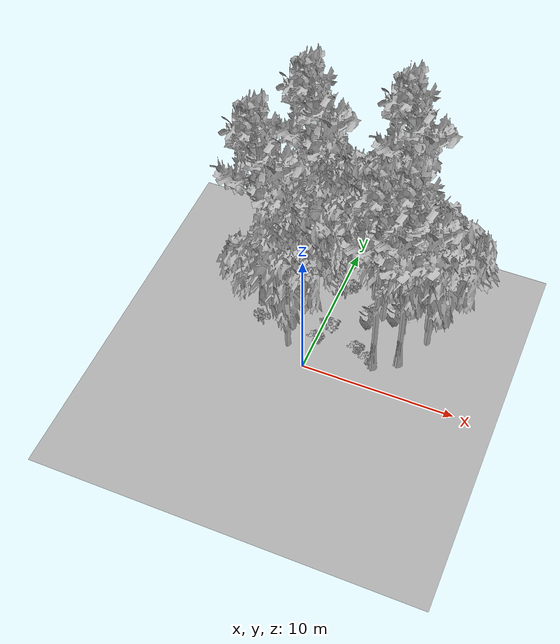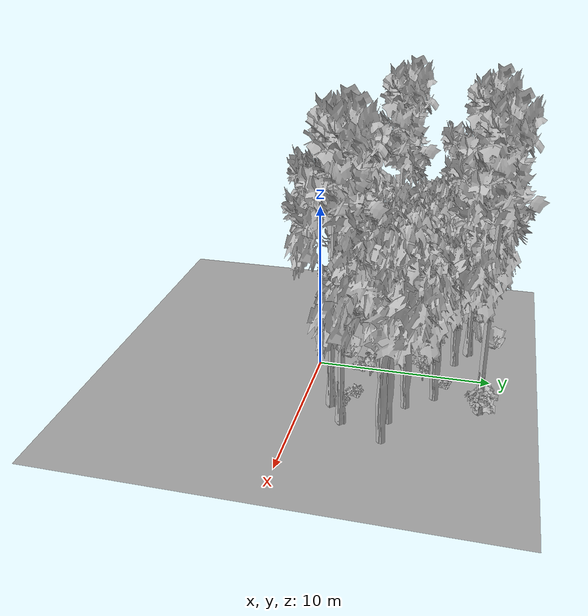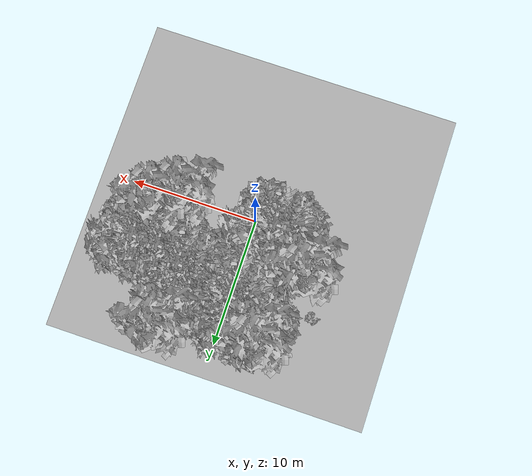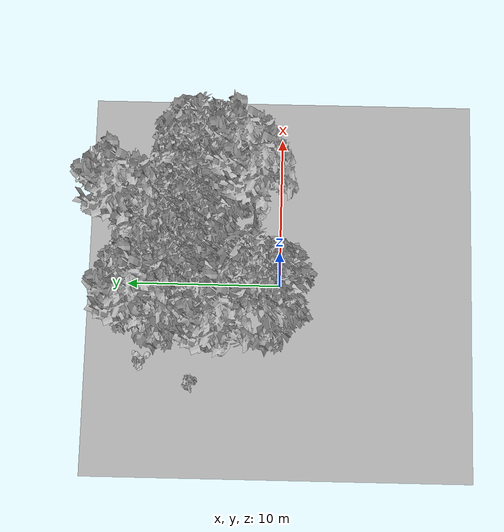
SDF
<sdf version="1.7">
 <world name="default">
  <model name="ground_plane">
   <static>1</static>
   <link name="link">
    <collision name="collision">
     <pose>-50 0 0 0 -0 0</pose>
     <geometry><plane><normal>0 0 1</normal><size>80 80</size></plane></geometry>
     <surface><contact><ode><min_depth>0.01</min_depth><max_vel>0</max_vel></ode></contact></surface>
    </collision>
    <visual name="grass">
     <cast_shadows>0</cast_shadows>
     <geometry>
      <mesh>
       <scale>0.46714285714285714 0.46714285714285714 0.1</scale>
       <uri>file://grass_plane/meshes/grass_plane.dae</uri>
      </mesh>
     </geometry>
    </visual>
   </link>
  </model>
  <model name="Tree 10">
   <static>1</static>
   <pose>6.639274143463979 4.720237174317347 0 1.57079 -0 0</pose>
   <link name="link">
    <collision name="collision">
     <geometry><mesh><scale>3.5 5 3.5</scale><uri>model://tree_2/meshes/tree_2.obj</uri></mesh></geometry>
    </collision>
    <visual name="visual">
     <geometry><mesh><scale>3.5 5 3.5</scale><uri>model://tree_2/meshes/tree_2.obj</uri></mesh></geometry>
    </visual>
   </link>
  </model>
  <model name="Tree 194">
   <static>1</static>
   <pose>4.128056727410026 1.5705913311421256 0 1.57079 -0 0</pose>
   <link name="link">
    <collision name="collision">
     <geometry><mesh><scale>3.5 5 3.5</scale><uri>model://tree_9/meshes/tree_9.obj</uri></mesh></geometry>
    </collision>
    <visual name="visual">
     <geometry><mesh><scale>3.5 5 3.5</scale><uri>model://tree_9/meshes/tree_9.obj</uri></mesh></geometry>
    </visual>
   </link>
  </model>
  <model name="Tree 270">
   <static>1</static>
   <pose>5.560789663220866 2.4032284581056444 0 1.57079 -0 0</pose>
   <link name="link">
    <collision name="collision">
     <geometry><mesh><scale>3.5 5 3.5</scale><uri>model://tree_9/meshes/tree_9.obj</uri></mesh></geometry>
    </collision>
    <visual name="visual">
     <geometry><mesh><scale>3.5 5 3.5</scale><uri>model://tree_9/meshes/tree_9.obj</uri></mesh></geometry>
    </visual>
   </link>
  </model>
  <model name="Tree 278">
   <static>1</static>
   <pose>-1.6653699890012064 7.812227485956306 0 1.57079 -0 0</pose>
   <link name="link">
    <collision name="collision">
     <geometry><mesh><scale>3.5 5 3.5</scale><uri>model://tree_2/meshes/tree_2.obj</uri></mesh></geometry>
    </collision>
    <visual name="visual">
     <geometry><mesh><scale>3.5 5 3.5</scale><uri>model://tree_2/meshes/tree_2.obj</uri></mesh></geometry>
    </visual>
   </link>
  </model>
  <model name="Tree 332">
   <static>1</static>
   <pose>3.3275484001614117 5.52490407444332 0 1.57079 -0 0</pose>
   <link name="link">
    <collision name="collision">
     <geometry><mesh><scale>3.5 5 3.5</scale><uri>model://tree_2/meshes/tree_2.obj</uri></mesh></geometry>
    </collision>
    <visual name="visual">
     <geometry><mesh><scale>3.5 5 3.5</scale><uri>model://tree_2/meshes/tree_2.obj</uri></mesh></geometry>
    </visual>
   </link>
  </model>
  <model name="Tree 336">
   <static>1</static>
   <pose>3.013310430145218 9.49152480461342 0 1.57079 -0 0</pose>
   <link name="link">
    <collision name="collision">
     <geometry><mesh><scale>3.5 5 3.5</scale><uri>model://tree_9/meshes/tree_9.obj</uri></mesh></geometry>
    </collision>
    <visual name="visual">
     <geometry><mesh><scale>3.5 5 3.5</scale><uri>model://tree_9/meshes/tree_9.obj</uri></mesh></geometry>
    </visual>
   </link>
  </model>
  <model name="Tree 417">
   <static>1</static>
   <pose>4.911665354084057 4.818813157517418 0 1.57079 -0 0</pose>
   <link name="link">
    <collision name="collision">
     <geometry><mesh><scale>3.5 5 3.5</scale><uri>model://tree_2/meshes/tree_2.obj</uri></mesh></geometry>
    </collision>
    <visual name="visual">
     <geometry><mesh><scale>3.5 5 3.5</scale><uri>model://tree_2/meshes/tree_2.obj</uri></mesh></geometry>
    </visual>
   </link>
  </model>
  <model name="Tree 496">
   <static>1</static>
   <pose>-2.955635643680715 8.550184694996965 0 1.57079 -0 0</pose>
   <link name="link">
    <collision name="collision">
     <geometry><mesh><scale>3.5 5 3.5</scale><uri>model://tree_9/meshes/tree_9.obj</uri></mesh></geometry>
    </collision>
    <visual name="visual">
     <geometry><mesh><scale>3.5 5 3.5</scale><uri>model://tree_9/meshes/tree_9.obj</uri></mesh></geometry>
    </visual>
   </link>
  </model>
  <model name="Tree 503">
   <static>1</static>
   <pose>-4.430904821933453 3.7848875366907393 0 1.57079 -0 0</pose>
   <link name="link">
    <collision name="collision">
     <geometry><mesh><scale>3.5 5 3.5</scale><uri>model://tree_9/meshes/tree_9.obj</uri></mesh></geometry>
    </collision>
    <visual name="visual">
     <geometry><mesh><scale>3.5 5 3.5</scale><uri>model://tree_9/meshes/tree_9.obj</uri></mesh></geometry>
    </visual>
   </link>
  </model>
  <model name="Tree 506">
   <static>1</static>
   <pose>-1.64913851750633 1.2456552503156502 0 1.57079 -0 0</pose>
   <link name="link">
    <collision name="collision">
     <geometry><mesh><scale>3.5 5 3.5</scale><uri>model://tree_2/meshes/tree_2.obj</uri></mesh></geometry>
    </collision>
    <visual name="visual">
     <geometry><mesh><scale>3.5 5 3.5</scale><uri>model://tree_2/meshes/tree_2.obj</uri></mesh></geometry>
    </visual>
   </link>
  </model>
  <model name="Tree 612">
   <static>1</static>
   <pose>2.201154895650376 6.9852212351903376 0 1.57079 -0 0</pose>
   <link name="link">
    <collision name="collision">
     <geometry><mesh><scale>3.5 5 3.5</scale><uri>model://tree_2/meshes/tree_2.obj</uri></mesh></geometry>
    </collision>
    <visual name="visual">
     <geometry><mesh><scale>3.5 5 3.5</scale><uri>model://tree_2/meshes/tree_2.obj</uri></mesh></geometry>
    </visual>
   </link>
  </model>
  <model name="Tree 627">
   <static>1</static>
   <pose>-0.40972681585771653 6.354339859182403 0 1.57079 -0 0</pose>
   <link name="link">
    <collision name="collision">
     <geometry><mesh><scale>3.5 5 3.5</scale><uri>model://tree_2/meshes/tree_2.obj</uri></mesh></geometry>
    </collision>
    <visual name="visual">
     <geometry><mesh><scale>3.5 5 3.5</scale><uri>model://tree_2/meshes/tree_2.obj</uri></mesh></geometry>
    </visual>
   </link>
  </model>
  <model name="Bush 34">
   <static>1</static>
   <pose>-3.6563072653272783 2.143274897248027 0 1.57079 -0 0</pose>
   <link name="link">
    <collision name="collision">
     <geometry><mesh><scale>2 2 2</scale><uri>model://bush_5/meshes/bush_5.obj</uri></mesh></geometry>
     <surface><contact><collide_without_contact>false</collide_without_contact></contact></surface>
    </collision>
    <visual name="visual">
     <geometry><mesh><scale>2 2 2</scale><uri>model://bush_5/meshes/bush_5.obj</uri></mesh></geometry>
    </visual>
   </link>
  </model>
  <model name="Bush 162">
   <static>1</static>
   <pose>2.6528907178812062 2.6022310454820143 0 1.57079 -0 0</pose>
   <link name="link">
    <collision name="collision">
     <geometry><mesh><scale>2 2 2</scale><uri>model://bush_2/meshes/bush_2.obj</uri></mesh></geometry>
     <surface><contact><collide_without_contact>false</collide_without_contact></contact></surface>
    </collision>
    <visual name="visual">
     <geometry><mesh><scale>2 2 2</scale><uri>model://bush_2/meshes/bush_2.obj</uri></mesh></geometry>
    </visual>
   </link>
  </model>
  <model name="Bush 178">
   <static>1</static>
   <pose>0.7154659183167595 3.1715460068625845 0 1.57079 -0 0</pose>
   <link name="link">
    <collision name="collision">
     <geometry><mesh><scale>2 2 2</scale><uri>model://bush_0/meshes/bush_0.obj</uri></mesh></geometry>
     <surface><contact><collide_without_contact>false</collide_without_contact></contact></surface>
    </collision>
    <visual name="visual">
     <geometry><mesh><scale>2 2 2</scale><uri>model://bush_0/meshes/bush_0.obj</uri></mesh></geometry>
    </visual>
   </link>
  </model>
  <model name="Bush 200">
   <static>1</static>
   <pose>-0.07697802214464389 2.432927273721589 0 1.57079 -0 0</pose>
   <link name="link">
    <collision name="collision">
     <geometry><mesh><scale>2 2 2</scale><uri>model://bush_2/meshes/bush_2.obj</uri></mesh></geometry>
     <surface><contact><collide_without_contact>false</collide_without_contact></contact></surface>
    </collision>
    <visual name="visual">
     <geometry><mesh><scale>2 2 2</scale><uri>model://bush_2/meshes/bush_2.obj</uri></mesh></geometry>
    </visual>
   </link>
  </model>
  <model name="Bush 287">
   <static>1</static>
   <pose>-5.06375311407249 8.954560693136322 0 1.57079 -0 0</pose>
   <link name="link">
    <collision name="collision">
     <geometry><mesh><scale>2 2 2</scale><uri>model://bush_0/meshes/bush_0.obj</uri></mesh></geometry>
     <surface><contact><collide_without_contact>false</collide_without_contact></contact></surface>
    </collision>
    <visual name="visual">
     <geometry><mesh><scale>2 2 2</scale><uri>model://bush_0/meshes/bush_0.obj</uri></mesh></geometry>
    </visual>
   </link>
  </model>
  <model name="Bush 297">
   <static>1</static>
   <pose>-2.6720105932634226 5.09628788341778 0 1.57079 -0 0</pose>
   <link name="link">
    <collision name="collision">
     <geometry><mesh><scale>2 2 2</scale><uri>model://bush_4/meshes/bush_4.obj</uri></mesh></geometry>
     <surface><contact><collide_without_contact>false</collide_without_contact></contact></surface>
    </collision>
    <visual name="visual">
     <geometry><mesh><scale>2 2 2</scale><uri>model://bush_4/meshes/bush_4.obj</uri></mesh></geometry>
    </visual>
   </link>
  </model>
  <model name="Bush 319">
   <static>1</static>
   <pose>3.6498305438702374 2.0415269334871198 0 1.57079 -0 0</pose>
   <link name="link">
    <collision name="collision">
     <geometry><mesh><scale>2 2 2</scale><uri>model://bush_2/meshes/bush_2.obj</uri></mesh></geometry>
     <surface><contact><collide_without_contact>false</collide_without_contact></contact></surface>
    </collision>
    <visual name="visual">
     <geometry><mesh><scale>2 2 2</scale><uri>model://bush_2/meshes/bush_2.obj</uri></mesh></geometry>
    </visual>
   </link>
  </model>
  <model name="Bush 400">
   <static>1</static>
   <pose>3.0574166710665196 9.518938305764777 0 1.57079 -0 0</pose>
   <link name="link">
    <collision name="collision">
     <geometry><mesh><scale>2 2 2</scale><uri>model://bush_1/meshes/bush_1.obj</uri></mesh></geometry>
     <surface><contact><collide_without_contact>false</collide_without_contact></contact></surface>
    </collision>
    <visual name="visual">
     <geometry><mesh><scale>2 2 2</scale><uri>model://bush_1/meshes/bush_1.obj</uri></mesh></geometry>
    </visual>
   </link>
  </model>
  <model name="Bush 494">
   <static>1</static>
   <pose>0.6817087557540376 7.3548918366131915 0 1.57079 -0 0</pose>
   <link name="link">
    <collision name="collision">
     <geometry><mesh><scale>2 2 2</scale><uri>model://bush_2/meshes/bush_2.obj</uri></mesh></geometry>
     <surface><contact><collide_without_contact>false</collide_without_contact></contact></surface>
    </collision>
    <visual name="visual">
     <geometry><mesh><scale>2 2 2</scale><uri>model://bush_2/meshes/bush_2.obj</uri></mesh></geometry>
    </visual>
   </link>
  </model>
  <model name="Bush 500">
   <static>1</static>
   <pose>0.531847385564042 6.183996463918469 0 1.57079 -0 0</pose>
   <link name="link">
    <collision name="collision">
     <geometry><mesh><scale>2 2 2</scale><uri>model://bush_5/meshes/bush_5.obj</uri></mesh></geometry>
     <surface><contact><collide_without_contact>false</collide_without_contact></contact></surface>
    </collision>
    <visual name="visual">
     <geometry><mesh><scale>2 2 2</scale><uri>model://bush_5/meshes/bush_5.obj</uri></mesh></geometry>
    </visual>
   </link>
  </model>
  <model name="Bush 569">
   <static>1</static>
   <pose>-6.485354285293546 5.731567585739377 0 1.57079 -0 0</pose>
   <link name="link">
    <collision name="collision">
     <geometry><mesh><scale>2 2 2</scale><uri>model://bush_2/meshes/bush_2.obj</uri></mesh></geometry>
     <surface><contact><collide_without_contact>false</collide_without_contact></contact></surface>
    </collision>
    <visual name="visual">
     <geometry><mesh><scale>2 2 2</scale><uri>model://bush_2/meshes/bush_2.obj</uri></mesh></geometry>
    </visual>
   </link>
  </model>
 </world>
</sdf>
